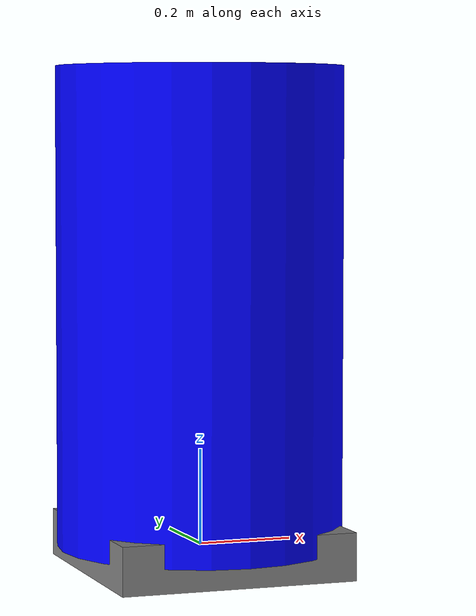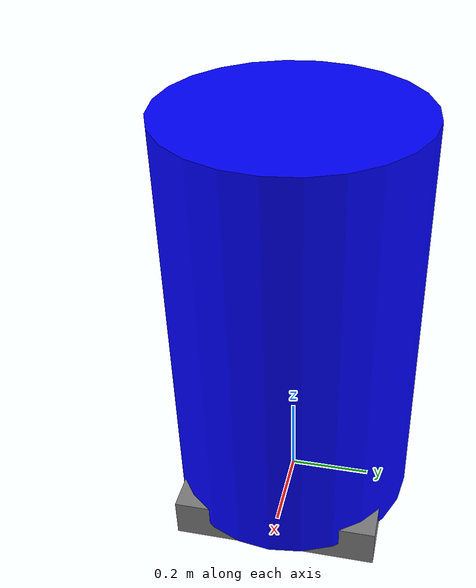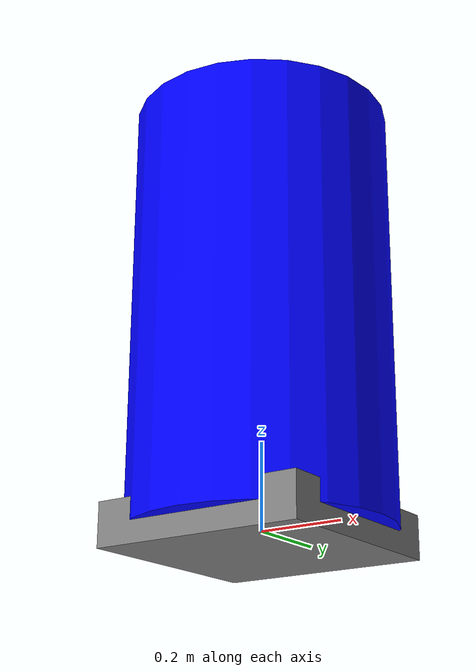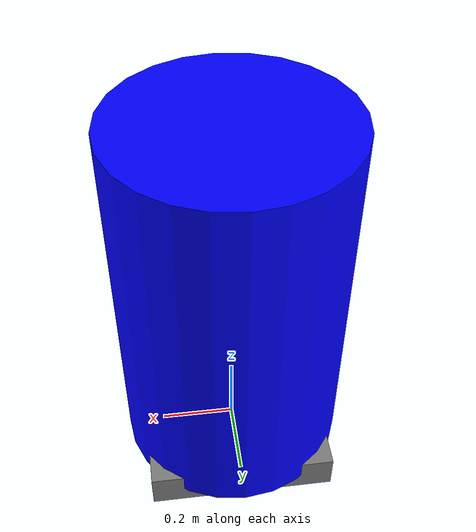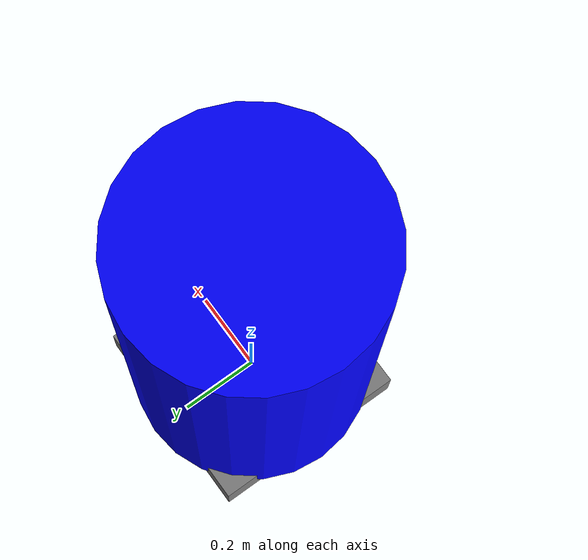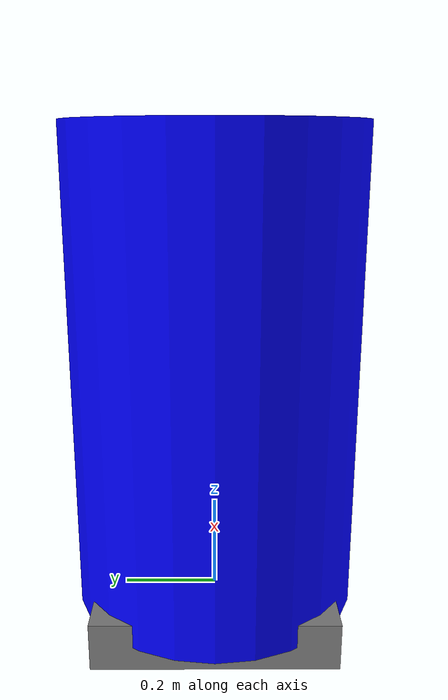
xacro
<?xml version="1.0"?>
<robot name="cylinder_bot" xmlns:xacro="http://www.ros.org/wiki/xacro">

  <!-- Base link -->
  <link name="base_link">
    <visual>
      <geometry>
        <box size="0.5 0.5 0.1"/>
      </geometry>
      <material name="gray">
        <color rgba="0.5 0.5 0.5 1"/>
      </material>
    </visual>
  </link>

  <!-- Cylinder link -->
  <link name="cylinder_link">
    <visual>
      <geometry>
        <cylinder length="1.0" radius="0.3"/>
      </geometry>
      <material name="blue">
        <color rgba="0 0 1 1"/>
      </material>
    </visual>
  </link>

  <!-- Revolute joint connecting them -->
  <joint name="cylinder_joint" type="revolute">
    <parent link="base_link"/>
    <child link="cylinder_link"/>
    <origin xyz="0 0 0.5" rpy="0 0 0"/>
    <axis xyz="0 0 1"/>
    <limit lower="-1.57" upper="1.57" effort="1.0" velocity="1.0"/>
  </joint>

</robot>
